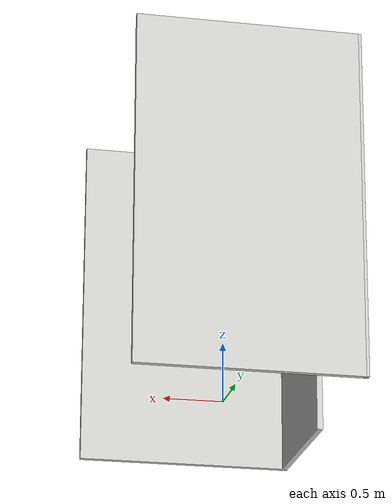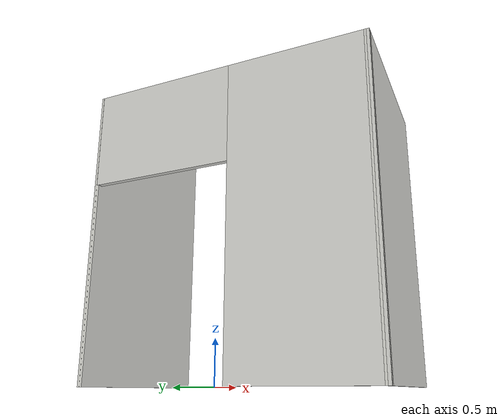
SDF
<?xml version='1.0'?>
<sdf version='1.7'>
  <model name='Entrance'>
    <pose>0 0 0 0 -0 0</pose>
    <link name='Wall_0'>
      <collision name='Wall_0_Collision'>
        <geometry>
          <box>
            <size>1.9 0.05 3</size>
          </box>
        </geometry>
        <pose>0 0 1.5 0 -0 0</pose>
      </collision>
      <visual name='Wall_0_Visual'>
        <pose>0 0 1.5 0 -0 0</pose>
        <geometry>
          <box>
            <size>1.9 0.05 3</size>
          </box>
        </geometry>
        <material>
          <script>
            <uri>file://media/materials/scripts/gazebo.material</uri>
            <name>Gazebo/CeilingTiled</name>
          </script>
          <ambient>1 1 1 1</ambient>
        </material>
        <meta>
          <layer>0</layer>
        </meta>
      </visual>
      <pose>-0.047439 0.882567 0 0 -0 -3.13619</pose>
    </link>
    <link name='Wall_1'>
      <pose>-0.972439 -0.547433 0 0 -0 -1.5708</pose>
      <visual name='Wall_1_Visual_0'>
        <pose>-1.4375 0 1.5 0 -0 0</pose>
        <geometry>
          <box>
            <size>0.025 0.05 3</size>
          </box>
        </geometry>
        <material>
          <script>
            <uri>file://media/materials/scripts/gazebo.material</uri>
            <name>Gazebo/CeilingTiled</name>
          </script>
          <ambient>1 1 1 1</ambient>
        </material>
        <meta>
          <layer>0</layer>
        </meta>
      </visual>
      <collision name='Wall_1_Collision_0'>
        <geometry>
          <box>
            <size>0.025 0.05 3</size>
          </box>
        </geometry>
        <pose>-1.4375 0 1.5 0 -0 0</pose>
      </collision>
      <visual name='Wall_1_Visual_1'>
        <pose>0.7625 0 1.5 0 -0 0</pose>
        <geometry>
          <box>
            <size>1.375 0.05 3</size>
          </box>
        </geometry>
        <material>
          <script>
            <uri>file://media/materials/scripts/gazebo.material</uri>
            <name>Gazebo/CeilingTiled</name>
          </script>
          <ambient>1 1 1 1</ambient>
        </material>
        <meta>
          <layer>0</layer>
        </meta>
      </visual>
      <collision name='Wall_1_Collision_1'>
        <geometry>
          <box>
            <size>1.375 0.05 3</size>
          </box>
        </geometry>
        <pose>0.7625 0 1.5 0 -0 0</pose>
      </collision>
      <visual name='Wall_1_Visual_2'>
        <pose>-0.675 0 2.5 0 -0 0</pose>
        <geometry>
          <box>
            <size>1.5 0.05 1</size>
          </box>
        </geometry>
        <material>
          <script>
            <uri>file://media/materials/scripts/gazebo.material</uri>
            <name>Gazebo/CeilingTiled</name>
          </script>
          <ambient>1 1 1 1</ambient>
        </material>
        <meta>
          <layer>0</layer>
        </meta>
      </visual>
      <collision name='Wall_1_Collision_2'>
        <geometry>
          <box>
            <size>1.5 0.05 1</size>
          </box>
        </geometry>
        <pose>-0.675 0 2.5 0 -0 0</pose>
      </collision>
    </link>
    <link name='Wall_2'>
      <collision name='Wall_2_Collision'>
        <geometry>
          <box>
            <size>1.9 0.05 3</size>
          </box>
        </geometry>
        <pose>0 0 1.5 0 -0 0</pose>
      </collision>
      <visual name='Wall_2_Visual'>
        <pose>0 0 1.5 0 -0 0</pose>
        <geometry>
          <box>
            <size>1.9 0.05 3</size>
          </box>
        </geometry>
        <material>
          <script>
            <uri>file://media/materials/scripts/gazebo.material</uri>
            <name>Gazebo/CeilingTiled</name>
          </script>
          <ambient>1 1 1 1</ambient>
        </material>
        <meta>
          <layer>0</layer>
        </meta>
      </visual>
      <pose>-0.047439 -1.96743 0 0 -0 0.005405</pose>
    </link>
    <static>1</static>
  </model>
</sdf>
